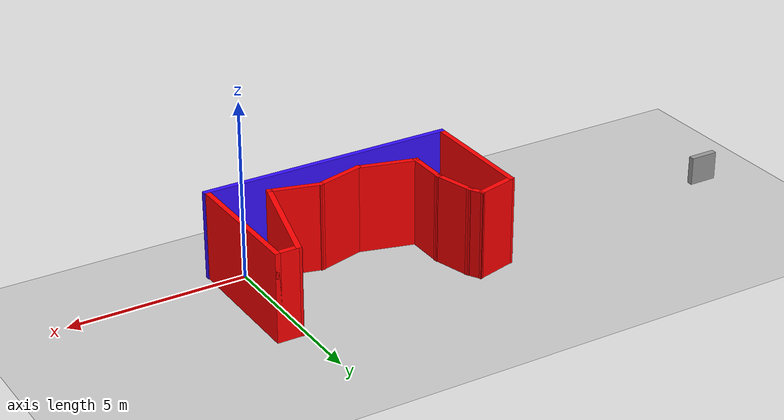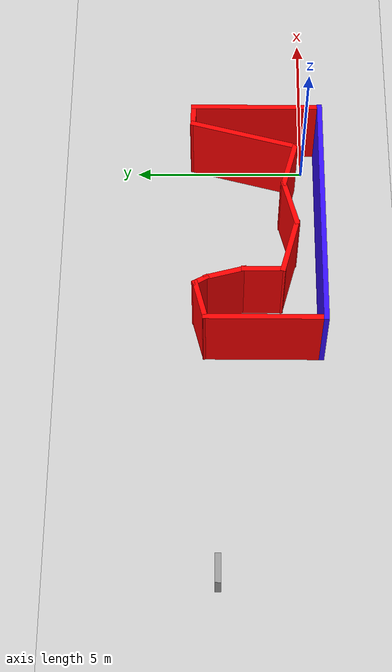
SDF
<sdf version="1.6">
 <world name="default">
  <light name="sun" type="directional">
   <pose>0 0 10 0 -0 0</pose>
   <diffuse>0.8 0.8 0.8 1</diffuse>
   <specular>0.2 0.2 0.2 1</specular>
   <attenuation>
    <range>1000</range>
    <constant>0.9</constant>
    <linear>0.01</linear>
    <quadratic>0.001</quadratic>
   </attenuation>
   <direction>-0.5 0.1 -0.9</direction>
  </light>
  <model name="ground_plane">
   <static>1</static>
   <link name="link">
    <collision name="collision">
     <geometry><plane><normal>0 0 1</normal><size>100 100</size></plane></geometry>
     <surface>
      <contact><collide_bitmask>65535</collide_bitmask></contact>
      <friction><ode><mu>100</mu><mu2>50</mu2></ode></friction>
     </surface>
    </collision>
    <visual name="visual">
     <cast_shadows>0</cast_shadows>
     <geometry><plane><normal>0 0 1</normal><size>100 100</size></plane></geometry>
     <material>
      <script><uri>file://media/materials/scripts/gazebo.material</uri><name>Gazebo/Grey</name></script>
     </material>
    </visual>
   </link>
  </model>
  <gravity>0 0 -9.8</gravity>
  <magnetic_field>6e-06 2.3e-05 -4.2e-05</magnetic_field>
  <atmosphere type="adiabatic"/>
  <physics name="default_physics" default="0" type="ode">
   <max_step_size>0.001</max_step_size>
   <real_time_factor>1</real_time_factor>
   <real_time_update_rate>1000</real_time_update_rate>
  </physics>
  <scene><ambient>0.4 0.4 0.4 1</ambient><background>0.7 0.7 0.7 1</background><shadows>1</shadows></scene>
  <spherical_coordinates>
   <surface_model>EARTH_WGS84</surface_model>
   <latitude_deg>0</latitude_deg>
   <longitude_deg>0</longitude_deg>
   <elevation>0</elevation>
   <heading_deg>0</heading_deg>
  </spherical_coordinates>
  <model name="Building2">
   <pose>-2.76199 1.4297 0 0 -0 0</pose>
   <link name="Wall_0">
    <collision name="Wall_0_Collision">
     <geometry><box><size>7.25 0.15 2.5</size></box></geometry>
     <pose>0 0 1.25 0 -0 0</pose>
    </collision>
    <visual name="Wall_0_Visual">
     <pose>0 0 1.25 0 -0 0</pose>
     <geometry><box><size>7.25 0.15 2.5</size></box></geometry>
     <material>
      <script><uri>file://media/materials/scripts/gazebo.material</uri><name>Gazebo/Grey</name></script>
      <ambient>0.211765 0.054902 1 1</ambient>
     </material>
     <meta><layer>0</layer></meta>
    </visual>
    <pose>0.008428 -1.88309 0 0 -0 3.14159</pose>
   </link>
   <link name="Wall_1">
    <collision name="Wall_1_Collision">
     <geometry><box><size>3.5 0.15 2.5</size></box></geometry>
     <pose>0 0 1.25 0 -0 0</pose>
    </collision>
    <visual name="Wall_1_Visual">
     <pose>0 0 1.25 0 -0 0</pose>
     <geometry><box><size>3.5 0.15 2.5</size></box></geometry>
     <material>
      <script><uri>file://media/materials/scripts/gazebo.material</uri><name>Gazebo/Grey</name></script>
      <ambient>1 0 0 1</ambient>
     </material>
     <meta><layer>0</layer></meta>
    </visual>
    <pose>-3.54157 -0.208094 0 0 -0 1.5708</pose>
   </link>
   <link name="Wall_10">
    <collision name="Wall_10_Collision">
     <geometry><box><size>0.75 0.15 2.5</size></box></geometry>
     <pose>0 0 1.25 0 -0 0</pose>
    </collision>
    <visual name="Wall_10_Visual">
     <pose>0 0 1.25 0 -0 0</pose>
     <geometry><box><size>0.75 0.15 2.5</size></box></geometry>
     <material>
      <script><uri>file://media/materials/scripts/gazebo.material</uri><name>Gazebo/Grey</name></script>
      <ambient>1 0 0 1</ambient>
     </material>
     <meta><layer>0</layer></meta>
    </visual>
    <pose>3.23647 1.86624 0 0 -0 0</pose>
   </link>
   <link name="Wall_11">
    <collision name="Wall_11_Collision">
     <geometry><box><size>3.75 0.15 2.5</size></box></geometry>
     <pose>0 0 1.25 0 -0 0</pose>
    </collision>
    <visual name="Wall_11_Visual">
     <pose>0 0 1.25 0 -0 0</pose>
     <geometry><box><size>3.75 0.15 2.5</size></box></geometry>
     <material>
      <script><uri>file://media/materials/scripts/gazebo.material</uri><name>Gazebo/Grey</name></script>
      <ambient>1 0 0 1</ambient>
     </material>
     <meta><layer>0</layer></meta>
    </visual>
    <pose>3.53647 0.066239 0 0 0 -1.5708</pose>
   </link>
   <link name="Wall_2">
    <collision name="Wall_2_Collision">
     <geometry><box><size>1.25 0.15 2.5</size></box></geometry>
     <pose>0 0 1.25 0 -0 0</pose>
    </collision>
    <visual name="Wall_2_Visual">
     <pose>0 0 1.25 0 -0 0</pose>
     <geometry><box><size>1.25 0.15 2.5</size></box></geometry>
     <material>
      <script><uri>file://media/materials/scripts/gazebo.material</uri><name>Gazebo/Grey</name></script>
      <ambient>1 0 0 1</ambient>
     </material>
     <meta><layer>0</layer></meta>
    </visual>
    <pose>-3.01031 1.60926 0 0 -0 0.261799</pose>
   </link>
   <link name="Wall_3">
    <collision name="Wall_3_Collision">
     <geometry><box><size>0.5 0.15 2.5</size></box></geometry>
     <pose>0 0 1.25 0 -0 0</pose>
    </collision>
    <visual name="Wall_3_Visual">
     <pose>0 0 1.25 0 -0 0</pose>
     <geometry><box><size>0.5 0.15 2.5</size></box></geometry>
     <material>
      <script><uri>file://media/materials/scripts/gazebo.material</uri><name>Gazebo/Grey</name></script>
      <ambient>1 0 0 1</ambient>
     </material>
     <meta><layer>0</layer></meta>
    </visual>
    <pose>-2.39155 1.60005 0 0 0 -1.0472</pose>
   </link>
   <link name="Wall_4">
    <collision name="Wall_4_Collision">
     <geometry><box><size>1.25 0.15 2.5</size></box></geometry>
     <pose>0 0 1.25 0 -0 0</pose>
    </collision>
    <visual name="Wall_4_Visual">
     <pose>0 0 1.25 0 -0 0</pose>
     <geometry><box><size>1.25 0.15 2.5</size></box></geometry>
     <material>
      <script><uri>file://media/materials/scripts/gazebo.material</uri><name>Gazebo/Grey</name></script>
      <ambient>1 0 0 1</ambient>
     </material>
     <meta><layer>0</layer></meta>
    </visual>
    <pose>-2.1617 0.917238 0 0 0 -1.309</pose>
   </link>
   <link name="Wall_5">
    <collision name="Wall_5_Collision">
     <geometry><box><size>1.25 0.15 2.5</size></box></geometry>
     <pose>0 0 1.25 0 -0 0</pose>
    </collision>
    <visual name="Wall_5_Visual">
     <pose>0 0 1.25 0 -0 0</pose>
     <geometry><box><size>1.25 0.15 2.5</size></box></geometry>
     <material>
      <script><uri>file://media/materials/scripts/gazebo.material</uri><name>Gazebo/Grey</name></script>
      <ambient>1 0 0 1</ambient>
     </material>
     <meta><layer>0</layer></meta>
    </visual>
    <pose>-2.01935 -0.164021 0 0 0 -1.5708</pose>
   </link>
   <link name="Wall_6">
    <collision name="Wall_6_Collision">
     <geometry><box><size>1.75 0.15 2.5</size></box></geometry>
     <pose>0 0 1.25 0 -0 0</pose>
    </collision>
    <visual name="Wall_6_Visual">
     <pose>0 0 1.25 0 -0 0</pose>
     <geometry><box><size>1.75 0.15 2.5</size></box></geometry>
     <material>
      <script><uri>file://media/materials/scripts/gazebo.material</uri><name>Gazebo/Grey</name></script>
      <ambient>1 0 0 1</ambient>
     </material>
     <meta><layer>0</layer></meta>
    </visual>
    <pose>-1.24661 -0.921076 0 0 0 -0.261799</pose>
   </link>
   <link name="Wall_7">
    <collision name="Wall_7_Collision">
     <geometry><box><size>1.5 0.15 2.5</size></box></geometry>
     <pose>0 0 1.25 0 -0 0</pose>
    </collision>
    <visual name="Wall_7_Visual">
     <pose>0 0 1.25 0 -0 0</pose>
     <geometry><box><size>1.5 0.15 2.5</size></box></geometry>
     <material>
      <script><uri>file://media/materials/scripts/gazebo.material</uri><name>Gazebo/Grey</name></script>
      <ambient>1 0 0 1</ambient>
     </material>
     <meta><layer>0</layer></meta>
    </visual>
    <pose>0.178129 -0.953429 0 0 -0 0.261799</pose>
   </link>
   <link name="Wall_8">
    <collision name="Wall_8_Collision">
     <geometry><box><size>1.5 0.15 2.5</size></box></geometry>
     <pose>0 0 1.25 0 -0 0</pose>
    </collision>
    <visual name="Wall_8_Visual">
     <pose>0 0 1.25 0 -0 0</pose>
     <geometry><box><size>1.5 0.15 2.5</size></box></geometry>
     <material>
      <script><uri>file://media/materials/scripts/gazebo.material</uri><name>Gazebo/Grey</name></script>
      <ambient>1 0 0 1</ambient>
     </material>
     <meta><layer>0</layer></meta>
    </visual>
    <pose>1.48213 -0.953429 0 0 0 -0.261799</pose>
   </link>
   <link name="Wall_9">
    <collision name="Wall_9_Collision">
     <geometry><box><size>3.25 0.15 2.5</size></box></geometry>
     <pose>0 0 1.25 0 -0 0</pose>
    </collision>
    <visual name="Wall_9_Visual">
     <pose>0 0 1.25 0 -0 0</pose>
     <geometry><box><size>3.25 0.15 2.5</size></box></geometry>
     <material>
      <script><uri>file://media/materials/scripts/gazebo.material</uri><name>Gazebo/Grey</name></script>
      <ambient>1 0 0 1</ambient>
     </material>
     <meta><layer>0</layer></meta>
    </visual>
    <pose>2.5353 0.369054 0 0 -0 1.309</pose>
   </link>
   <link name="Window_0">
    <collision name="Window_0_Collision">
     <geometry><box><size>0.8 0.17 0.8</size></box></geometry>
     <pose>0 0 0.4 0 -0 0</pose>
    </collision>
    <visual name="Window_0_Visual">
     <pose>0 0 0.4 0 -0 0</pose>
     <geometry><box><size>0.8 0.17 0.8</size></box></geometry>
     <material>
      <script><uri>file://media/materials/scripts/gazebo.material</uri><name>Gazebo/Grey</name></script>
     </material>
    </visual>
    <pose>-10.2921 1.07832 0.5 0 -0 0</pose>
   </link>
   <static>1</static>
  </model>
 </world>
</sdf>
